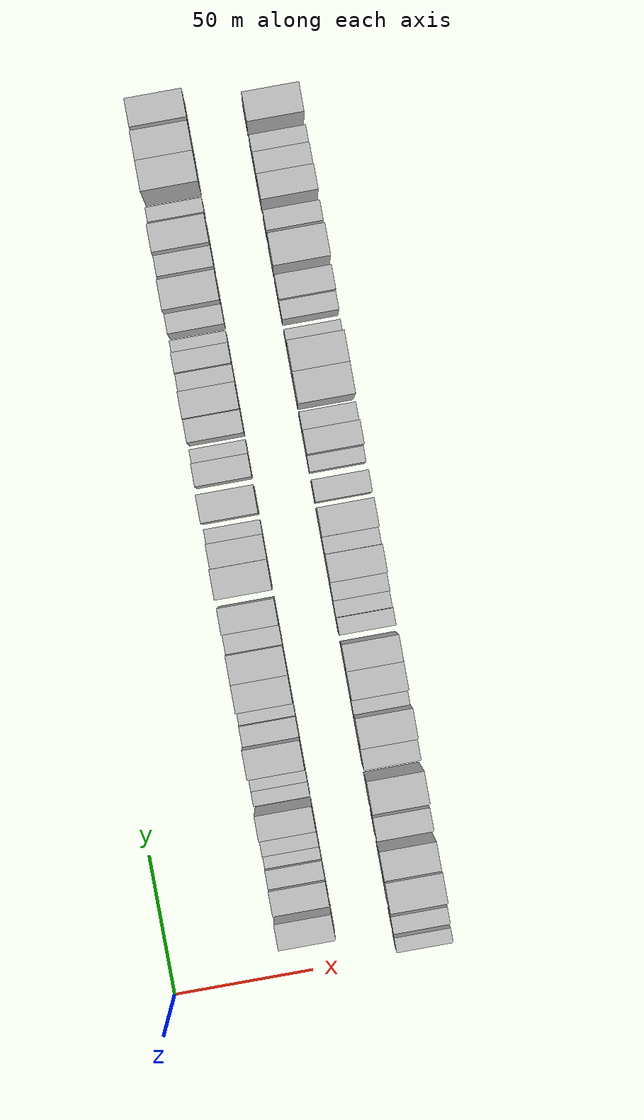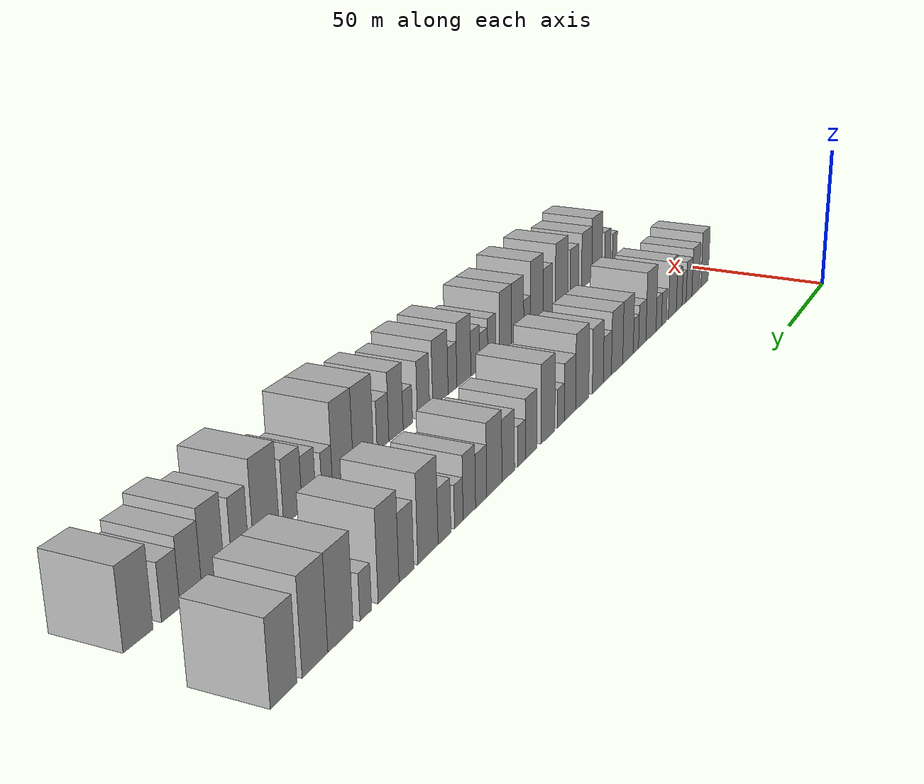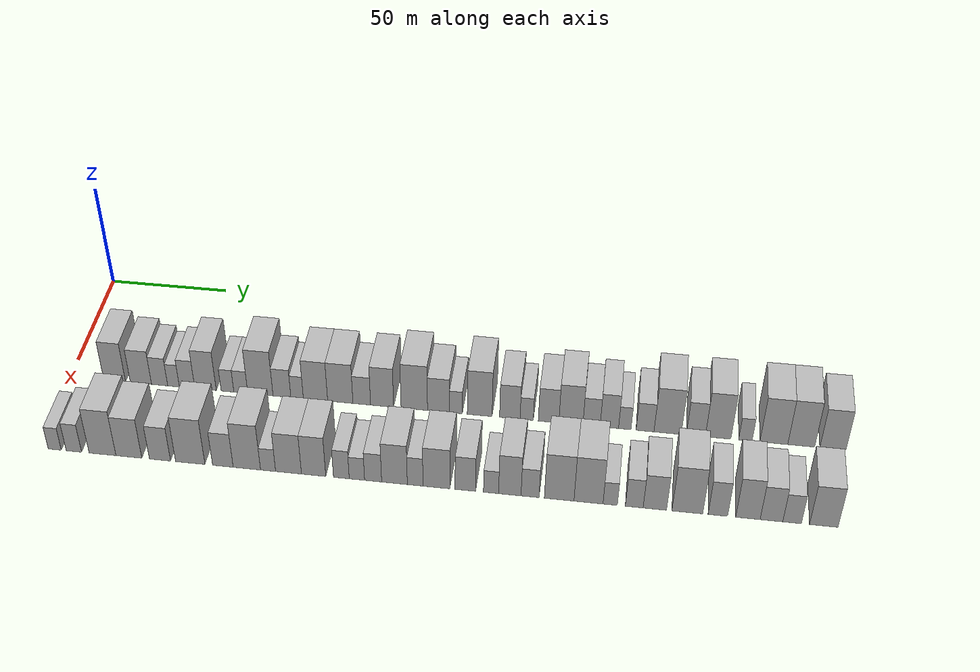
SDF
<sdf version="1.6">
 <world name="default">
  <model name="building_35">
   <static>1</static>
   <pose>50.0000 18.3578 0 0.000000 0.000000 0.000000</pose>
   <link name="link">
    <pose>0 0 10.50 0 0 0</pose>
    <collision name="collision"><geometry><box><size>20.0000 9.1016 21.0000</size></box></geometry></collision>
    <visual name="visual">
     <cast_shadows>0</cast_shadows>
     <geometry><box><size>20.0000 9.1016 21.0000</size></box></geometry>
     <material>
      <script>
       <uri>model://HANNAS_wall/materials/scripts</uri>
       <uri>model://HANNAS_wall/materials/textures</uri>
       <name>vrc/HANNAS_wall</name>
      </script>
     </material>
    </visual>
   </link>
  </model>
  <model name="building_36">
   <static>1</static>
   <pose>50.0000 29.3276 0 0.000000 0.000000 0.000000</pose>
   <link name="link">
    <pose>0 0 9.00 0 0 0</pose>
    <collision name="collision"><geometry><box><size>20.0000 8.8378 18.0000</size></box></geometry></collision>
    <visual name="visual">
     <cast_shadows>0</cast_shadows>
     <geometry><box><size>20.0000 8.8378 18.0000</size></box></geometry>
     <material>
      <script>
       <uri>model://HANNAS_wall/materials/scripts</uri>
       <uri>model://HANNAS_wall/materials/textures</uri>
       <name>vrc/HANNAS_wall</name>
      </script>
     </material>
    </visual>
   </link>
  </model>
  <model name="building_37">
   <static>1</static>
   <pose>50.0000 37.1012 0 0.000000 0.000000 0.000000</pose>
   <link name="link">
    <pose>0 0 7.50 0 0 0</pose>
    <collision name="collision"><geometry><box><size>20.0000 6.7094 15.0000</size></box></geometry></collision>
    <visual name="visual">
     <cast_shadows>0</cast_shadows>
     <geometry><box><size>20.0000 6.7094 15.0000</size></box></geometry>
     <material>
      <script>
       <uri>model://HANNAS_wall/materials/scripts</uri>
       <uri>model://HANNAS_wall/materials/textures</uri>
       <name>vrc/HANNAS_wall</name>
      </script>
     </material>
    </visual>
   </link>
  </model>
  <model name="building_38">
   <static>1</static>
   <pose>50.0000 42.8789 0 0.000000 0.000000 0.000000</pose>
   <link name="link">
    <pose>0 0 6.00 0 0 0</pose>
    <collision name="collision"><geometry><box><size>20.0000 4.8460 12.0000</size></box></geometry></collision>
    <visual name="visual">
     <cast_shadows>0</cast_shadows>
     <geometry><box><size>20.0000 4.8460 12.0000</size></box></geometry>
     <material>
      <script>
       <uri>model://HANNAS_wall/materials/scripts</uri>
       <uri>model://HANNAS_wall/materials/textures</uri>
       <name>vrc/HANNAS_wall</name>
      </script>
     </material>
    </visual>
   </link>
  </model>
  <model name="building_39">
   <static>1</static>
   <pose>50.0000 48.4959 0 0.000000 0.000000 0.000000</pose>
   <link name="link">
    <pose>0 0 7.50 0 0 0</pose>
    <collision name="collision"><geometry><box><size>20.0000 6.3881 15.0000</size></box></geometry></collision>
    <visual name="visual">
     <cast_shadows>0</cast_shadows>
     <geometry><box><size>20.0000 6.3881 15.0000</size></box></geometry>
     <material>
      <script>
       <uri>model://HANNAS_wall/materials/scripts</uri>
       <uri>model://HANNAS_wall/materials/textures</uri>
       <name>vrc/HANNAS_wall</name>
      </script>
     </material>
    </visual>
   </link>
  </model>
  <model name="building_40">
   <static>1</static>
   <pose>50.0000 56.1326 0 0.000000 0.000000 0.000000</pose>
   <link name="link">
    <pose>0 0 10.50 0 0 0</pose>
    <collision name="collision"><geometry><box><size>20.0000 8.8852 21.0000</size></box></geometry></collision>
    <visual name="visual">
     <cast_shadows>0</cast_shadows>
     <geometry><box><size>20.0000 8.8852 21.0000</size></box></geometry>
     <material>
      <script>
       <uri>model://HANNAS_wall/materials/scripts</uri>
       <uri>model://HANNAS_wall/materials/textures</uri>
       <name>vrc/HANNAS_wall</name>
      </script>
     </material>
    </visual>
   </link>
  </model>
  <model name="building_41">
   <static>1</static>
   <pose>50.0000 65.1850 0 0.000000 0.000000 0.000000</pose>
   <link name="link">
    <pose>0 0 6.00 0 0 0</pose>
    <collision name="collision"><geometry><box><size>20.0000 5.2195 12.0000</size></box></geometry></collision>
    <visual name="visual">
     <cast_shadows>0</cast_shadows>
     <geometry><box><size>20.0000 5.2195 12.0000</size></box></geometry>
     <material>
      <script>
       <uri>model://HANNAS_wall/materials/scripts</uri>
       <uri>model://HANNAS_wall/materials/textures</uri>
       <name>vrc/HANNAS_wall</name>
      </script>
     </material>
    </visual>
   </link>
  </model>
  <model name="building_42">
   <static>1</static>
   <pose>50.0000 70.6543 0 0.000000 0.000000 0.000000</pose>
   <link name="link">
    <pose>0 0 6.00 0 0 0</pose>
    <collision name="collision"><geometry><box><size>20.0000 5.7191 12.0000</size></box></geometry></collision>
    <visual name="visual">
     <cast_shadows>0</cast_shadows>
     <geometry><box><size>20.0000 5.7191 12.0000</size></box></geometry>
     <material>
      <script>
       <uri>model://HANNAS_wall/materials/scripts</uri>
       <uri>model://HANNAS_wall/materials/textures</uri>
       <name>vrc/HANNAS_wall</name>
      </script>
     </material>
    </visual>
   </link>
  </model>
  <model name="building_43">
   <static>1</static>
   <pose>50.0000 78.7085 0 0.000000 0.000000 0.000000</pose>
   <link name="link">
    <pose>0 0 12.00 0 0 0</pose>
    <collision name="collision"><geometry><box><size>20.0000 10.3895 24.0000</size></box></geometry></collision>
    <visual name="visual">
     <cast_shadows>0</cast_shadows>
     <geometry><box><size>20.0000 10.3895 24.0000</size></box></geometry>
     <material>
      <script>
       <uri>model://HANNAS_wall/materials/scripts</uri>
       <uri>model://HANNAS_wall/materials/textures</uri>
       <name>vrc/HANNAS_wall</name>
      </script>
     </material>
    </visual>
   </link>
  </model>
  <model name="building_44">
   <static>1</static>
   <pose>50.0000 87.5398 0 0.000000 0.000000 0.000000</pose>
   <link name="link">
    <pose>0 0 7.50 0 0 0</pose>
    <collision name="collision"><geometry><box><size>20.0000 7.2731 15.0000</size></box></geometry></collision>
    <visual name="visual">
     <cast_shadows>0</cast_shadows>
     <geometry><box><size>20.0000 7.2731 15.0000</size></box></geometry>
     <material>
      <script>
       <uri>model://HANNAS_wall/materials/scripts</uri>
       <uri>model://HANNAS_wall/materials/textures</uri>
       <name>vrc/HANNAS_wall</name>
      </script>
     </material>
    </visual>
   </link>
  </model>
  <model name="building_45">
   <static>1</static>
   <pose>50.0000 93.7264 0 0.000000 0.000000 0.000000</pose>
   <link name="link">
    <pose>0 0 6.00 0 0 0</pose>
    <collision name="collision"><geometry><box><size>20.0000 5.1001 12.0000</size></box></geometry></collision>
    <visual name="visual">
     <cast_shadows>0</cast_shadows>
     <geometry><box><size>20.0000 5.1001 12.0000</size></box></geometry>
     <material>
      <script>
       <uri>model://HANNAS_wall/materials/scripts</uri>
       <uri>model://HANNAS_wall/materials/textures</uri>
       <name>vrc/HANNAS_wall</name>
      </script>
     </material>
    </visual>
   </link>
  </model>
  <model name="building_46">
   <static>1</static>
   <pose>50.0000 101.2266 0 0.000000 0.000000 0.000000</pose>
   <link name="link">
    <pose>0 0 10.50 0 0 0</pose>
    <collision name="collision"><geometry><box><size>20.0000 9.9003 21.0000</size></box></geometry></collision>
    <visual name="visual">
     <cast_shadows>0</cast_shadows>
     <geometry><box><size>20.0000 9.9003 21.0000</size></box></geometry>
     <material>
      <script>
       <uri>model://HANNAS_wall/materials/scripts</uri>
       <uri>model://HANNAS_wall/materials/textures</uri>
       <name>vrc/HANNAS_wall</name>
      </script>
     </material>
    </visual>
   </link>
  </model>
  <model name="building_47">
   <static>1</static>
   <pose>50.0000 111.3244 0 0.000000 0.000000 0.000000</pose>
   <link name="link">
    <pose>0 0 10.50 0 0 0</pose>
    <collision name="collision"><geometry><box><size>20.0000 10.2953 21.0000</size></box></geometry></collision>
    <visual name="visual">
     <cast_shadows>0</cast_shadows>
     <geometry><box><size>20.0000 10.2953 21.0000</size></box></geometry>
     <material>
      <script>
       <uri>model://HANNAS_wall/materials/scripts</uri>
       <uri>model://HANNAS_wall/materials/textures</uri>
       <name>vrc/HANNAS_wall</name>
      </script>
     </material>
    </visual>
   </link>
  </model>
  <model name="building_48">
   <static>1</static>
   <pose>50.0000 120.0511 0 0.000000 0.000000 0.000000</pose>
   <link name="link">
    <pose>0 0 7.50 0 0 0</pose>
    <collision name="collision"><geometry><box><size>20.0000 7.1583 15.0000</size></box></geometry></collision>
    <visual name="visual">
     <cast_shadows>0</cast_shadows>
     <geometry><box><size>20.0000 7.1583 15.0000</size></box></geometry>
     <material>
      <script>
       <uri>model://HANNAS_wall/materials/scripts</uri>
       <uri>model://HANNAS_wall/materials/textures</uri>
       <name>vrc/HANNAS_wall</name>
      </script>
     </material>
    </visual>
   </link>
  </model>
  <model name="building_49">
   <static>1</static>
   <pose>50.0000 128.2841 0 0.000000 0.000000 0.000000</pose>
   <link name="link">
    <pose>0 0 10.50 0 0 0</pose>
    <collision name="collision"><geometry><box><size>20.0000 9.3077 21.0000</size></box></geometry></collision>
    <visual name="visual">
     <cast_shadows>0</cast_shadows>
     <geometry><box><size>20.0000 9.3077 21.0000</size></box></geometry>
     <material>
      <script>
       <uri>model://HANNAS_wall/materials/scripts</uri>
       <uri>model://HANNAS_wall/materials/textures</uri>
       <name>vrc/HANNAS_wall</name>
      </script>
     </material>
    </visual>
   </link>
  </model>
  <model name="building_50">
   <static>1</static>
   <pose>50.0000 141.2554 0 0.000000 0.000000 0.000000</pose>
   <link name="link">
    <pose>0 0 12.00 0 0 0</pose>
    <collision name="collision"><geometry><box><size>20.0000 10.6349 24.0000</size></box></geometry></collision>
    <visual name="visual">
     <cast_shadows>0</cast_shadows>
     <geometry><box><size>20.0000 10.6349 24.0000</size></box></geometry>
     <material>
      <script>
       <uri>model://HANNAS_wall/materials/scripts</uri>
       <uri>model://HANNAS_wall/materials/textures</uri>
       <name>vrc/HANNAS_wall</name>
      </script>
     </material>
    </visual>
   </link>
  </model>
  <model name="building_51">
   <static>1</static>
   <pose>50.0000 150.9640 0 0.000000 0.000000 0.000000</pose>
   <link name="link">
    <pose>0 0 9.00 0 0 0</pose>
    <collision name="collision"><geometry><box><size>20.0000 8.7823 18.0000</size></box></geometry></collision>
    <visual name="visual">
     <cast_shadows>0</cast_shadows>
     <geometry><box><size>20.0000 8.7823 18.0000</size></box></geometry>
     <material>
      <script>
       <uri>model://HANNAS_wall/materials/scripts</uri>
       <uri>model://HANNAS_wall/materials/textures</uri>
       <name>vrc/HANNAS_wall</name>
      </script>
     </material>
    </visual>
   </link>
  </model>
  <model name="building_52">
   <static>1</static>
   <pose>50.0000 157.9376 0 0.000000 0.000000 0.000000</pose>
   <link name="link">
    <pose>0 0 6.00 0 0 0</pose>
    <collision name="collision"><geometry><box><size>20.0000 5.1650 12.0000</size></box></geometry></collision>
    <visual name="visual">
     <cast_shadows>0</cast_shadows>
     <geometry><box><size>20.0000 5.1650 12.0000</size></box></geometry>
     <material>
      <script>
       <uri>model://HANNAS_wall/materials/scripts</uri>
       <uri>model://HANNAS_wall/materials/textures</uri>
       <name>vrc/HANNAS_wall</name>
      </script>
     </material>
    </visual>
   </link>
  </model>
  <model name="building_53">
   <static>1</static>
   <pose>50.0000 167.4618 0 0.000000 0.000000 0.000000</pose>
   <link name="link">
    <pose>0 0 12.00 0 0 0</pose>
    <collision name="collision"><geometry><box><size>20.0000 9.8834 24.0000</size></box></geometry></collision>
    <visual name="visual">
     <cast_shadows>0</cast_shadows>
     <geometry><box><size>20.0000 9.8834 24.0000</size></box></geometry>
     <material>
      <script>
       <uri>model://HANNAS_wall/materials/scripts</uri>
       <uri>model://HANNAS_wall/materials/textures</uri>
       <name>vrc/HANNAS_wall</name>
      </script>
     </material>
    </visual>
   </link>
  </model>
  <model name="building_54">
   <static>1</static>
   <pose>50.0000 179.4813 0 0.000000 0.000000 0.000000</pose>
   <link name="link">
    <pose>0 0 9.00 0 0 0</pose>
    <collision name="collision"><geometry><box><size>20.0000 8.1556 18.0000</size></box></geometry></collision>
    <visual name="visual">
     <cast_shadows>0</cast_shadows>
     <geometry><box><size>20.0000 8.1556 18.0000</size></box></geometry>
     <material>
      <script>
       <uri>model://HANNAS_wall/materials/scripts</uri>
       <uri>model://HANNAS_wall/materials/textures</uri>
       <name>vrc/HANNAS_wall</name>
      </script>
     </material>
    </visual>
   </link>
  </model>
  <model name="building_55">
   <static>1</static>
   <pose>50.0000 186.1787 0 0.000000 0.000000 0.000000</pose>
   <link name="link">
    <pose>0 0 6.00 0 0 0</pose>
    <collision name="collision"><geometry><box><size>20.0000 5.2392 12.0000</size></box></geometry></collision>
    <visual name="visual">
     <cast_shadows>0</cast_shadows>
     <geometry><box><size>20.0000 5.2392 12.0000</size></box></geometry>
     <material>
      <script>
       <uri>model://HANNAS_wall/materials/scripts</uri>
       <uri>model://HANNAS_wall/materials/textures</uri>
       <name>vrc/HANNAS_wall</name>
      </script>
     </material>
    </visual>
   </link>
  </model>
  <model name="building_56">
   <static>1</static>
   <pose>50.0000 194.8588 0 0.000000 0.000000 0.000000</pose>
   <link name="link">
    <pose>0 0 9.00 0 0 0</pose>
    <collision name="collision"><geometry><box><size>20.0000 8.1209 18.0000</size></box></geometry></collision>
    <visual name="visual">
     <cast_shadows>0</cast_shadows>
     <geometry><box><size>20.0000 8.1209 18.0000</size></box></geometry>
     <material>
      <script>
       <uri>model://HANNAS_wall/materials/scripts</uri>
       <uri>model://HANNAS_wall/materials/textures</uri>
       <name>vrc/HANNAS_wall</name>
      </script>
     </material>
    </visual>
   </link>
  </model>
  <model name="building_57">
   <static>1</static>
   <pose>50.0000 203.6728 0 0.000000 0.000000 0.000000</pose>
   <link name="link">
    <pose>0 0 10.50 0 0 0</pose>
    <collision name="collision"><geometry><box><size>20.0000 9.5072 21.0000</size></box></geometry></collision>
    <visual name="visual">
     <cast_shadows>0</cast_shadows>
     <geometry><box><size>20.0000 9.5072 21.0000</size></box></geometry>
     <material>
      <script>
       <uri>model://HANNAS_wall/materials/scripts</uri>
       <uri>model://HANNAS_wall/materials/textures</uri>
       <name>vrc/HANNAS_wall</name>
      </script>
     </material>
    </visual>
   </link>
  </model>
  <model name="building_58">
   <static>1</static>
   <pose>50.0000 211.8074 0 0.000000 0.000000 0.000000</pose>
   <link name="link">
    <pose>0 0 7.50 0 0 0</pose>
    <collision name="collision"><geometry><box><size>20.0000 6.7619 15.0000</size></box></geometry></collision>
    <visual name="visual">
     <cast_shadows>0</cast_shadows>
     <geometry><box><size>20.0000 6.7619 15.0000</size></box></geometry>
     <material>
      <script>
       <uri>model://HANNAS_wall/materials/scripts</uri>
       <uri>model://HANNAS_wall/materials/textures</uri>
       <name>vrc/HANNAS_wall</name>
      </script>
     </material>
    </visual>
   </link>
  </model>
  <model name="building_59">
   <static>1</static>
   <pose>50.0000 218.8079 0 0.000000 0.000000 0.000000</pose>
   <link name="link">
    <pose>0 0 9.00 0 0 0</pose>
    <collision name="collision"><geometry><box><size>20.0000 7.2391 18.0000</size></box></geometry></collision>
    <visual name="visual">
     <cast_shadows>0</cast_shadows>
     <geometry><box><size>20.0000 7.2391 18.0000</size></box></geometry>
     <material>
      <script>
       <uri>model://HANNAS_wall/materials/scripts</uri>
       <uri>model://HANNAS_wall/materials/textures</uri>
       <name>vrc/HANNAS_wall</name>
      </script>
     </material>
    </visual>
   </link>
  </model>
  <model name="building_60">
   <static>1</static>
   <pose>50.0000 224.8794 0 0.000000 0.000000 0.000000</pose>
   <link name="link">
    <pose>0 0 6.00 0 0 0</pose>
    <collision name="collision"><geometry><box><size>20.0000 4.9039 12.0000</size></box></geometry></collision>
    <visual name="visual">
     <cast_shadows>0</cast_shadows>
     <geometry><box><size>20.0000 4.9039 12.0000</size></box></geometry>
     <material>
      <script>
       <uri>model://HANNAS_wall/materials/scripts</uri>
       <uri>model://HANNAS_wall/materials/textures</uri>
       <name>vrc/HANNAS_wall</name>
      </script>
     </material>
    </visual>
   </link>
  </model>
  <model name="building_61">
   <static>1</static>
   <pose>50.0000 232.8269 0 0.000000 0.000000 0.000000</pose>
   <link name="link">
    <pose>0 0 7.50 0 0 0</pose>
    <collision name="collision"><geometry><box><size>20.0000 6.9911 15.0000</size></box></geometry></collision>
    <visual name="visual">
     <cast_shadows>0</cast_shadows>
     <geometry><box><size>20.0000 6.9911 15.0000</size></box></geometry>
     <material>
      <script>
       <uri>model://HANNAS_wall/materials/scripts</uri>
       <uri>model://HANNAS_wall/materials/textures</uri>
       <name>vrc/HANNAS_wall</name>
      </script>
     </material>
    </visual>
   </link>
  </model>
  <model name="building_62">
   <static>1</static>
   <pose>50.0000 241.6393 0 0.000000 0.000000 0.000000</pose>
   <link name="link">
    <pose>0 0 12.00 0 0 0</pose>
    <collision name="collision"><geometry><box><size>20.0000 10.6336 24.0000</size></box></geometry></collision>
    <visual name="visual">
     <cast_shadows>0</cast_shadows>
     <geometry><box><size>20.0000 10.6336 24.0000</size></box></geometry>
     <material>
      <script>
       <uri>model://HANNAS_wall/materials/scripts</uri>
       <uri>model://HANNAS_wall/materials/textures</uri>
       <name>vrc/HANNAS_wall</name>
      </script>
     </material>
    </visual>
   </link>
  </model>
  <model name="building_63">
   <static>1</static>
   <pose>50.0000 252.6410 0 0.000000 0.000000 0.000000</pose>
   <link name="link">
    <pose>0 0 9.00 0 0 0</pose>
    <collision name="collision"><geometry><box><size>20.0000 7.3699 18.0000</size></box></geometry></collision>
    <visual name="visual">
     <cast_shadows>0</cast_shadows>
     <geometry><box><size>20.0000 7.3699 18.0000</size></box></geometry>
     <material>
      <script>
       <uri>model://HANNAS_wall/materials/scripts</uri>
       <uri>model://HANNAS_wall/materials/textures</uri>
       <name>vrc/HANNAS_wall</name>
      </script>
     </material>
    </visual>
   </link>
  </model>
  <model name="building_64">
   <static>1</static>
   <pose>50.0000 261.2885 0 0.000000 0.000000 0.000000</pose>
   <link name="link">
    <pose>0 0 12.00 0 0 0</pose>
    <collision name="collision"><geometry><box><size>20.0000 9.9250 24.0000</size></box></geometry></collision>
    <visual name="visual">
     <cast_shadows>0</cast_shadows>
     <geometry><box><size>20.0000 9.9250 24.0000</size></box></geometry>
     <material>
      <script>
       <uri>model://HANNAS_wall/materials/scripts</uri>
       <uri>model://HANNAS_wall/materials/textures</uri>
       <name>vrc/HANNAS_wall</name>
      </script>
     </material>
    </visual>
   </link>
  </model>
  <model name="building_65">
   <static>1</static>
   <pose>50.0000 271.8575 0 0.000000 0.000000 0.000000</pose>
   <link name="link">
    <pose>0 0 6.00 0 0 0</pose>
    <collision name="collision"><geometry><box><size>20.0000 5.2131 12.0000</size></box></geometry></collision>
    <visual name="visual">
     <cast_shadows>0</cast_shadows>
     <geometry><box><size>20.0000 5.2131 12.0000</size></box></geometry>
     <material>
      <script>
       <uri>model://HANNAS_wall/materials/scripts</uri>
       <uri>model://HANNAS_wall/materials/textures</uri>
       <name>vrc/HANNAS_wall</name>
      </script>
     </material>
    </visual>
   </link>
  </model>
  <model name="building_66">
   <static>1</static>
   <pose>50.0000 282.8292 0 0.000000 0.000000 0.000000</pose>
   <link name="link">
    <pose>0 0 12.00 0 0 0</pose>
    <collision name="collision"><geometry><box><size>20.0000 10.7302 24.0000</size></box></geometry></collision>
    <visual name="visual">
     <cast_shadows>0</cast_shadows>
     <geometry><box><size>20.0000 10.7302 24.0000</size></box></geometry>
     <material>
      <script>
       <uri>model://HANNAS_wall/materials/scripts</uri>
       <uri>model://HANNAS_wall/materials/textures</uri>
       <name>vrc/HANNAS_wall</name>
      </script>
     </material>
    </visual>
   </link>
  </model>
  <model name="building_67">
   <static>1</static>
   <pose>50.0000 293.3667 0 0.000000 0.000000 0.000000</pose>
   <link name="link">
    <pose>0 0 12.00 0 0 0</pose>
    <collision name="collision"><geometry><box><size>20.0000 10.3449 24.0000</size></box></geometry></collision>
    <visual name="visual">
     <cast_shadows>0</cast_shadows>
     <geometry><box><size>20.0000 10.3449 24.0000</size></box></geometry>
     <material>
      <script>
       <uri>model://HANNAS_wall/materials/scripts</uri>
       <uri>model://HANNAS_wall/materials/textures</uri>
       <name>vrc/HANNAS_wall</name>
      </script>
     </material>
    </visual>
   </link>
  </model>
  <model name="building_68">
   <static>1</static>
   <pose>50.0000 305.5257 0 0.000000 0.000000 0.000000</pose>
   <link name="link">
    <pose>0 0 10.50 0 0 0</pose>
    <collision name="collision"><geometry><box><size>20.0000 9.9730 21.0000</size></box></geometry></collision>
    <visual name="visual">
     <cast_shadows>0</cast_shadows>
     <geometry><box><size>20.0000 9.9730 21.0000</size></box></geometry>
     <material>
      <script>
       <uri>model://HANNAS_wall/materials/scripts</uri>
       <uri>model://HANNAS_wall/materials/textures</uri>
       <name>vrc/HANNAS_wall</name>
      </script>
     </material>
    </visual>
   </link>
  </model>
  <model name="building_101">
   <static>1</static>
   <pose>90.0000 6.2363 0 0.000000 0.000000 0.000000</pose>
   <link name="link">
    <pose>0 0 6.00 0 0 0</pose>
    <collision name="collision"><geometry><box><size>20.0000 5.2288 12.0000</size></box></geometry></collision>
    <visual name="visual">
     <cast_shadows>0</cast_shadows>
     <geometry><box><size>20.0000 5.2288 12.0000</size></box></geometry>
     <material>
      <script>
       <uri>model://HANNAS_wall/materials/scripts</uri>
       <uri>model://HANNAS_wall/materials/textures</uri>
       <name>vrc/HANNAS_wall</name>
      </script>
     </material>
    </visual>
   </link>
  </model>
  <model name="building_102">
   <static>1</static>
   <pose>90.0000 13.9206 0 0.000000 0.000000 0.000000</pose>
   <link name="link">
    <pose>0 0 7.50 0 0 0</pose>
    <collision name="collision"><geometry><box><size>20.0000 6.1398 15.0000</size></box></geometry></collision>
    <visual name="visual">
     <cast_shadows>0</cast_shadows>
     <geometry><box><size>20.0000 6.1398 15.0000</size></box></geometry>
     <material>
      <script>
       <uri>model://HANNAS_wall/materials/scripts</uri>
       <uri>model://HANNAS_wall/materials/textures</uri>
       <name>vrc/HANNAS_wall</name>
      </script>
     </material>
    </visual>
   </link>
  </model>
  <model name="building_103">
   <static>1</static>
   <pose>90.0000 25.3450 0 0.000000 0.000000 0.000000</pose>
   <link name="link">
    <pose>0 0 12.00 0 0 0</pose>
    <collision name="collision"><geometry><box><size>20.0000 10.7088 24.0000</size></box></geometry></collision>
    <visual name="visual">
     <cast_shadows>0</cast_shadows>
     <geometry><box><size>20.0000 10.7088 24.0000</size></box></geometry>
     <material>
      <script>
       <uri>model://HANNAS_wall/materials/scripts</uri>
       <uri>model://HANNAS_wall/materials/textures</uri>
       <name>vrc/HANNAS_wall</name>
      </script>
     </material>
    </visual>
   </link>
  </model>
  <model name="building_104">
   <static>1</static>
   <pose>90.0000 35.8431 0 0.000000 0.000000 0.000000</pose>
   <link name="link">
    <pose>0 0 10.50 0 0 0</pose>
    <collision name="collision"><geometry><box><size>20.0000 10.2875 21.0000</size></box></geometry></collision>
    <visual name="visual">
     <cast_shadows>0</cast_shadows>
     <geometry><box><size>20.0000 10.2875 21.0000</size></box></geometry>
     <material>
      <script>
       <uri>model://HANNAS_wall/materials/scripts</uri>
       <uri>model://HANNAS_wall/materials/textures</uri>
       <name>vrc/HANNAS_wall</name>
      </script>
     </material>
    </visual>
   </link>
  </model>
  <model name="building_105">
   <static>1</static>
   <pose>90.0000 48.1673 0 0.000000 0.000000 0.000000</pose>
   <link name="link">
    <pose>0 0 9.00 0 0 0</pose>
    <collision name="collision"><geometry><box><size>20.0000 8.3607 18.0000</size></box></geometry></collision>
    <visual name="visual">
     <cast_shadows>0</cast_shadows>
     <geometry><box><size>20.0000 8.3607 18.0000</size></box></geometry>
     <material>
      <script>
       <uri>model://HANNAS_wall/materials/scripts</uri>
       <uri>model://HANNAS_wall/materials/textures</uri>
       <name>vrc/HANNAS_wall</name>
      </script>
     </material>
    </visual>
   </link>
  </model>
  <model name="building_106">
   <static>1</static>
   <pose>90.0000 60.1326 0 0.000000 0.000000 0.000000</pose>
   <link name="link">
    <pose>0 0 12.00 0 0 0</pose>
    <collision name="collision"><geometry><box><size>20.0000 11.5699 24.0000</size></box></geometry></collision>
    <visual name="visual">
     <cast_shadows>0</cast_shadows>
     <geometry><box><size>20.0000 11.5699 24.0000</size></box></geometry>
     <material>
      <script>
       <uri>model://HANNAS_wall/materials/scripts</uri>
       <uri>model://HANNAS_wall/materials/textures</uri>
       <name>vrc/HANNAS_wall</name>
      </script>
     </material>
    </visual>
   </link>
  </model>
  <model name="building_107">
   <static>1</static>
   <pose>90.0000 72.9621 0 0.000000 0.000000 0.000000</pose>
   <link name="link">
    <pose>0 0 9.00 0 0 0</pose>
    <collision name="collision"><geometry><box><size>20.0000 8.0892 18.0000</size></box></geometry></collision>
    <visual name="visual">
     <cast_shadows>0</cast_shadows>
     <geometry><box><size>20.0000 8.0892 18.0000</size></box></geometry>
     <material>
      <script>
       <uri>model://HANNAS_wall/materials/scripts</uri>
       <uri>model://HANNAS_wall/materials/textures</uri>
       <name>vrc/HANNAS_wall</name>
      </script>
     </material>
    </visual>
   </link>
  </model>
  <model name="building_108">
   <static>1</static>
   <pose>90.0000 82.3619 0 0.000000 0.000000 0.000000</pose>
   <link name="link">
    <pose>0 0 12.00 0 0 0</pose>
    <collision name="collision"><geometry><box><size>20.0000 10.7104 24.0000</size></box></geometry></collision>
    <visual name="visual">
     <cast_shadows>0</cast_shadows>
     <geometry><box><size>20.0000 10.7104 24.0000</size></box></geometry>
     <material>
      <script>
       <uri>model://HANNAS_wall/materials/scripts</uri>
       <uri>model://HANNAS_wall/materials/textures</uri>
       <name>vrc/HANNAS_wall</name>
      </script>
     </material>
    </visual>
   </link>
  </model>
  <model name="building_109">
   <static>1</static>
   <pose>90.0000 90.6611 0 0.000000 0.000000 0.000000</pose>
   <link name="link">
    <pose>0 0 6.00 0 0 0</pose>
    <collision name="collision"><geometry><box><size>20.0000 5.8879 12.0000</size></box></geometry></collision>
    <visual name="visual">
     <cast_shadows>0</cast_shadows>
     <geometry><box><size>20.0000 5.8879 12.0000</size></box></geometry>
     <material>
      <script>
       <uri>model://HANNAS_wall/materials/scripts</uri>
       <uri>model://HANNAS_wall/materials/textures</uri>
       <name>vrc/HANNAS_wall</name>
      </script>
     </material>
    </visual>
   </link>
  </model>
  <model name="building_110">
   <static>1</static>
   <pose>90.0000 98.6370 0 0.000000 0.000000 0.000000</pose>
   <link name="link">
    <pose>0 0 10.50 0 0 0</pose>
    <collision name="collision"><geometry><box><size>20.0000 10.0638 21.0000</size></box></geometry></collision>
    <visual name="visual">
     <cast_shadows>0</cast_shadows>
     <geometry><box><size>20.0000 10.0638 21.0000</size></box></geometry>
     <material>
      <script>
       <uri>model://HANNAS_wall/materials/scripts</uri>
       <uri>model://HANNAS_wall/materials/textures</uri>
       <name>vrc/HANNAS_wall</name>
      </script>
     </material>
    </visual>
   </link>
  </model>
  <model name="building_111">
   <static>1</static>
   <pose>90.0000 108.3869 0 0.000000 0.000000 0.000000</pose>
   <link name="link">
    <pose>0 0 10.50 0 0 0</pose>
    <collision name="collision"><geometry><box><size>20.0000 9.4360 21.0000</size></box></geometry></collision>
    <visual name="visual">
     <cast_shadows>0</cast_shadows>
     <geometry><box><size>20.0000 9.4360 21.0000</size></box></geometry>
     <material>
      <script>
       <uri>model://HANNAS_wall/materials/scripts</uri>
       <uri>model://HANNAS_wall/materials/textures</uri>
       <name>vrc/HANNAS_wall</name>
      </script>
     </material>
    </visual>
   </link>
  </model>
  <model name="building_112">
   <static>1</static>
   <pose>90.0000 119.1475 0 0.000000 0.000000 0.000000</pose>
   <link name="link">
    <pose>0 0 7.50 0 0 0</pose>
    <collision name="collision"><geometry><box><size>20.0000 6.0852 15.0000</size></box></geometry></collision>
    <visual name="visual">
     <cast_shadows>0</cast_shadows>
     <geometry><box><size>20.0000 6.0852 15.0000</size></box></geometry>
     <material>
      <script>
       <uri>model://HANNAS_wall/materials/scripts</uri>
       <uri>model://HANNAS_wall/materials/textures</uri>
       <name>vrc/HANNAS_wall</name>
      </script>
     </material>
    </visual>
   </link>
  </model>
  <model name="building_113">
   <static>1</static>
   <pose>90.0000 125.1614 0 0.000000 0.000000 0.000000</pose>
   <link name="link">
    <pose>0 0 6.00 0 0 0</pose>
    <collision name="collision"><geometry><box><size>20.0000 5.9427 12.0000</size></box></geometry></collision>
    <visual name="visual">
     <cast_shadows>0</cast_shadows>
     <geometry><box><size>20.0000 5.9427 12.0000</size></box></geometry>
     <material>
      <script>
       <uri>model://HANNAS_wall/materials/scripts</uri>
       <uri>model://HANNAS_wall/materials/textures</uri>
       <name>vrc/HANNAS_wall</name>
      </script>
     </material>
    </visual>
   </link>
  </model>
  <model name="building_114">
   <static>1</static>
   <pose>90.0000 131.4122 0 0.000000 0.000000 0.000000</pose>
   <link name="link">
    <pose>0 0 7.50 0 0 0</pose>
    <collision name="collision"><geometry><box><size>20.0000 6.5590 15.0000</size></box></geometry></collision>
    <visual name="visual">
     <cast_shadows>0</cast_shadows>
     <geometry><box><size>20.0000 6.5590 15.0000</size></box></geometry>
     <material>
      <script>
       <uri>model://HANNAS_wall/materials/scripts</uri>
       <uri>model://HANNAS_wall/materials/textures</uri>
       <name>vrc/HANNAS_wall</name>
      </script>
     </material>
    </visual>
   </link>
  </model>
  <model name="building_115">
   <static>1</static>
   <pose>90.0000 139.6276 0 0.000000 0.000000 0.000000</pose>
   <link name="link">
    <pose>0 0 10.50 0 0 0</pose>
    <collision name="collision"><geometry><box><size>20.0000 9.8717 21.0000</size></box></geometry></collision>
    <visual name="visual">
     <cast_shadows>0</cast_shadows>
     <geometry><box><size>20.0000 9.8717 21.0000</size></box></geometry>
     <material>
      <script>
       <uri>model://HANNAS_wall/materials/scripts</uri>
       <uri>model://HANNAS_wall/materials/textures</uri>
       <name>vrc/HANNAS_wall</name>
      </script>
     </material>
    </visual>
   </link>
  </model>
  <model name="building_116">
   <static>1</static>
   <pose>90.0000 147.5748 0 0.000000 0.000000 0.000000</pose>
   <link name="link">
    <pose>0 0 7.50 0 0 0</pose>
    <collision name="collision"><geometry><box><size>20.0000 6.0228 15.0000</size></box></geometry></collision>
    <visual name="visual">
     <cast_shadows>0</cast_shadows>
     <geometry><box><size>20.0000 6.0228 15.0000</size></box></geometry>
     <material>
      <script>
       <uri>model://HANNAS_wall/materials/scripts</uri>
       <uri>model://HANNAS_wall/materials/textures</uri>
       <name>vrc/HANNAS_wall</name>
      </script>
     </material>
    </visual>
   </link>
  </model>
  <model name="building_117">
   <static>1</static>
   <pose>90.0000 155.7100 0 0.000000 0.000000 0.000000</pose>
   <link name="link">
    <pose>0 0 10.50 0 0 0</pose>
    <collision name="collision"><geometry><box><size>20.0000 10.2476 21.0000</size></box></geometry></collision>
    <visual name="visual">
     <cast_shadows>0</cast_shadows>
     <geometry><box><size>20.0000 10.2476 21.0000</size></box></geometry>
     <material>
      <script>
       <uri>model://HANNAS_wall/materials/scripts</uri>
       <uri>model://HANNAS_wall/materials/textures</uri>
       <name>vrc/HANNAS_wall</name>
      </script>
     </material>
    </visual>
   </link>
  </model>
  <model name="building_118">
   <static>1</static>
   <pose>90.0000 166.7392 0 0.000000 0.000000 0.000000</pose>
   <link name="link">
    <pose>0 0 9.00 0 0 0</pose>
    <collision name="collision"><geometry><box><size>20.0000 7.8108 18.0000</size></box></geometry></collision>
    <visual name="visual">
     <cast_shadows>0</cast_shadows>
     <geometry><box><size>20.0000 7.8108 18.0000</size></box></geometry>
     <material>
      <script>
       <uri>model://HANNAS_wall/materials/scripts</uri>
       <uri>model://HANNAS_wall/materials/textures</uri>
       <name>vrc/HANNAS_wall</name>
      </script>
     </material>
    </visual>
   </link>
  </model>
  <model name="building_119">
   <static>1</static>
   <pose>90.0000 176.5151 0 0.000000 0.000000 0.000000</pose>
   <link name="link">
    <pose>0 0 6.00 0 0 0</pose>
    <collision name="collision"><geometry><box><size>20.0000 5.7412 12.0000</size></box></geometry></collision>
    <visual name="visual">
     <cast_shadows>0</cast_shadows>
     <geometry><box><size>20.0000 5.7412 12.0000</size></box></geometry>
     <material>
      <script>
       <uri>model://HANNAS_wall/materials/scripts</uri>
       <uri>model://HANNAS_wall/materials/textures</uri>
       <name>vrc/HANNAS_wall</name>
      </script>
     </material>
    </visual>
   </link>
  </model>
  <model name="building_120">
   <static>1</static>
   <pose>90.0000 183.6376 0 0.000000 0.000000 0.000000</pose>
   <link name="link">
    <pose>0 0 10.50 0 0 0</pose>
    <collision name="collision"><geometry><box><size>20.0000 8.5037 21.0000</size></box></geometry></collision>
    <visual name="visual">
     <cast_shadows>0</cast_shadows>
     <geometry><box><size>20.0000 8.5037 21.0000</size></box></geometry>
     <material>
      <script>
       <uri>model://HANNAS_wall/materials/scripts</uri>
       <uri>model://HANNAS_wall/materials/textures</uri>
       <name>vrc/HANNAS_wall</name>
      </script>
     </material>
    </visual>
   </link>
  </model>
  <model name="building_121">
   <static>1</static>
   <pose>90.0000 191.2949 0 0.000000 0.000000 0.000000</pose>
   <link name="link">
    <pose>0 0 7.50 0 0 0</pose>
    <collision name="collision"><geometry><box><size>20.0000 6.8108 15.0000</size></box></geometry></collision>
    <visual name="visual">
     <cast_shadows>0</cast_shadows>
     <geometry><box><size>20.0000 6.8108 15.0000</size></box></geometry>
     <material>
      <script>
       <uri>model://HANNAS_wall/materials/scripts</uri>
       <uri>model://HANNAS_wall/materials/textures</uri>
       <name>vrc/HANNAS_wall</name>
      </script>
     </material>
    </visual>
   </link>
  </model>
  <model name="building_122">
   <static>1</static>
   <pose>90.0000 202.2783 0 0.000000 0.000000 0.000000</pose>
   <link name="link">
    <pose>0 0 12.00 0 0 0</pose>
    <collision name="collision"><geometry><box><size>20.0000 11.1560 24.0000</size></box></geometry></collision>
    <visual name="visual">
     <cast_shadows>0</cast_shadows>
     <geometry><box><size>20.0000 11.1560 24.0000</size></box></geometry>
     <material>
      <script>
       <uri>model://HANNAS_wall/materials/scripts</uri>
       <uri>model://HANNAS_wall/materials/textures</uri>
       <name>vrc/HANNAS_wall</name>
      </script>
     </material>
    </visual>
   </link>
  </model>
  <model name="building_123">
   <static>1</static>
   <pose>90.0000 213.3019 0 0.000000 0.000000 0.000000</pose>
   <link name="link">
    <pose>0 0 12.00 0 0 0</pose>
    <collision name="collision"><geometry><box><size>20.0000 10.8912 24.0000</size></box></geometry></collision>
    <visual name="visual">
     <cast_shadows>0</cast_shadows>
     <geometry><box><size>20.0000 10.8912 24.0000</size></box></geometry>
     <material>
      <script>
       <uri>model://HANNAS_wall/materials/scripts</uri>
       <uri>model://HANNAS_wall/materials/textures</uri>
       <name>vrc/HANNAS_wall</name>
      </script>
     </material>
    </visual>
   </link>
  </model>
  <model name="building_124">
   <static>1</static>
   <pose>90.0000 221.4336 0 0.000000 0.000000 0.000000</pose>
   <link name="link">
    <pose>0 0 6.00 0 0 0</pose>
    <collision name="collision"><geometry><box><size>20.0000 5.3722 12.0000</size></box></geometry></collision>
    <visual name="visual">
     <cast_shadows>0</cast_shadows>
     <geometry><box><size>20.0000 5.3722 12.0000</size></box></geometry>
     <material>
      <script>
       <uri>model://HANNAS_wall/materials/scripts</uri>
       <uri>model://HANNAS_wall/materials/textures</uri>
       <name>vrc/HANNAS_wall</name>
      </script>
     </material>
    </visual>
   </link>
  </model>
  <model name="building_125">
   <static>1</static>
   <pose>90.0000 230.4324 0 0.000000 0.000000 0.000000</pose>
   <link name="link">
    <pose>0 0 7.50 0 0 0</pose>
    <collision name="collision"><geometry><box><size>20.0000 6.6255 15.0000</size></box></geometry></collision>
    <visual name="visual">
     <cast_shadows>0</cast_shadows>
     <geometry><box><size>20.0000 6.6255 15.0000</size></box></geometry>
     <material>
      <script>
       <uri>model://HANNAS_wall/materials/scripts</uri>
       <uri>model://HANNAS_wall/materials/textures</uri>
       <name>vrc/HANNAS_wall</name>
      </script>
     </material>
    </visual>
   </link>
  </model>
  <model name="building_126">
   <static>1</static>
   <pose>90.0000 238.1085 0 0.000000 0.000000 0.000000</pose>
   <link name="link">
    <pose>0 0 9.00 0 0 0</pose>
    <collision name="collision"><geometry><box><size>20.0000 8.7267 18.0000</size></box></geometry></collision>
    <visual name="visual">
     <cast_shadows>0</cast_shadows>
     <geometry><box><size>20.0000 8.7267 18.0000</size></box></geometry>
     <material>
      <script>
       <uri>model://HANNAS_wall/materials/scripts</uri>
       <uri>model://HANNAS_wall/materials/textures</uri>
       <name>vrc/HANNAS_wall</name>
      </script>
     </material>
    </visual>
   </link>
  </model>
  <model name="building_127">
   <static>1</static>
   <pose>90.0000 250.1764 0 0.000000 0.000000 0.000000</pose>
   <link name="link">
    <pose>0 0 12.00 0 0 0</pose>
    <collision name="collision"><geometry><box><size>20.0000 11.4090 24.0000</size></box></geometry></collision>
    <visual name="visual">
     <cast_shadows>0</cast_shadows>
     <geometry><box><size>20.0000 11.4090 24.0000</size></box></geometry>
     <material>
      <script>
       <uri>model://HANNAS_wall/materials/scripts</uri>
       <uri>model://HANNAS_wall/materials/textures</uri>
       <name>vrc/HANNAS_wall</name>
      </script>
     </material>
    </visual>
   </link>
  </model>
  <model name="building_128">
   <static>1</static>
   <pose>90.0000 261.4814 0 0.000000 0.000000 0.000000</pose>
   <link name="link">
    <pose>0 0 9.00 0 0 0</pose>
    <collision name="collision"><geometry><box><size>20.0000 7.2011 18.0000</size></box></geometry></collision>
    <visual name="visual">
     <cast_shadows>0</cast_shadows>
     <geometry><box><size>20.0000 7.2011 18.0000</size></box></geometry>
     <material>
      <script>
       <uri>model://HANNAS_wall/materials/scripts</uri>
       <uri>model://HANNAS_wall/materials/textures</uri>
       <name>vrc/HANNAS_wall</name>
      </script>
     </material>
    </visual>
   </link>
  </model>
  <model name="building_129">
   <static>1</static>
   <pose>90.0000 272.5739 0 0.000000 0.000000 0.000000</pose>
   <link name="link">
    <pose>0 0 10.50 0 0 0</pose>
    <collision name="collision"><geometry><box><size>20.0000 8.9840 21.0000</size></box></geometry></collision>
    <visual name="visual">
     <cast_shadows>0</cast_shadows>
     <geometry><box><size>20.0000 8.9840 21.0000</size></box></geometry>
     <material>
      <script>
       <uri>model://HANNAS_wall/materials/scripts</uri>
       <uri>model://HANNAS_wall/materials/textures</uri>
       <name>vrc/HANNAS_wall</name>
      </script>
     </material>
    </visual>
   </link>
  </model>
  <model name="building_130">
   <static>1</static>
   <pose>90.0000 281.2173 0 0.000000 0.000000 0.000000</pose>
   <link name="link">
    <pose>0 0 9.00 0 0 0</pose>
    <collision name="collision"><geometry><box><size>20.0000 8.3027 18.0000</size></box></geometry></collision>
    <visual name="visual">
     <cast_shadows>0</cast_shadows>
     <geometry><box><size>20.0000 8.3027 18.0000</size></box></geometry>
     <material>
      <script>
       <uri>model://HANNAS_wall/materials/scripts</uri>
       <uri>model://HANNAS_wall/materials/textures</uri>
       <name>vrc/HANNAS_wall</name>
      </script>
     </material>
    </visual>
   </link>
  </model>
  <model name="building_131">
   <static>1</static>
   <pose>90.0000 288.7744 0 0.000000 0.000000 0.000000</pose>
   <link name="link">
    <pose>0 0 7.50 0 0 0</pose>
    <collision name="collision"><geometry><box><size>20.0000 6.8114 15.0000</size></box></geometry></collision>
    <visual name="visual">
     <cast_shadows>0</cast_shadows>
     <geometry><box><size>20.0000 6.8114 15.0000</size></box></geometry>
     <material>
      <script>
       <uri>model://HANNAS_wall/materials/scripts</uri>
       <uri>model://HANNAS_wall/materials/textures</uri>
       <name>vrc/HANNAS_wall</name>
      </script>
     </material>
    </visual>
   </link>
  </model>
  <model name="building_132">
   <static>1</static>
   <pose>90.0000 300.3558 0 0.000000 0.000000 0.000000</pose>
   <link name="link">
    <pose>0 0 10.50 0 0 0</pose>
    <collision name="collision"><geometry><box><size>20.0000 10.3515 21.0000</size></box></geometry></collision>
    <visual name="visual">
     <cast_shadows>0</cast_shadows>
     <geometry><box><size>20.0000 10.3515 21.0000</size></box></geometry>
     <material>
      <script>
       <uri>model://HANNAS_wall/materials/scripts</uri>
       <uri>model://HANNAS_wall/materials/textures</uri>
       <name>vrc/HANNAS_wall</name>
      </script>
     </material>
    </visual>
   </link>
  </model>
 </world>
</sdf>
